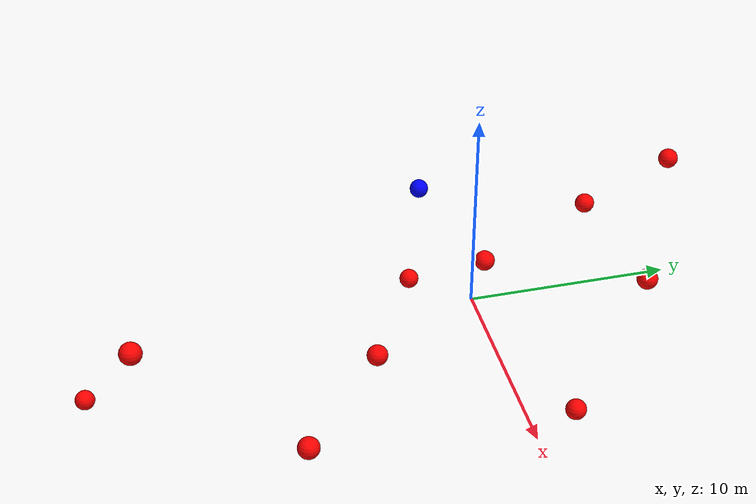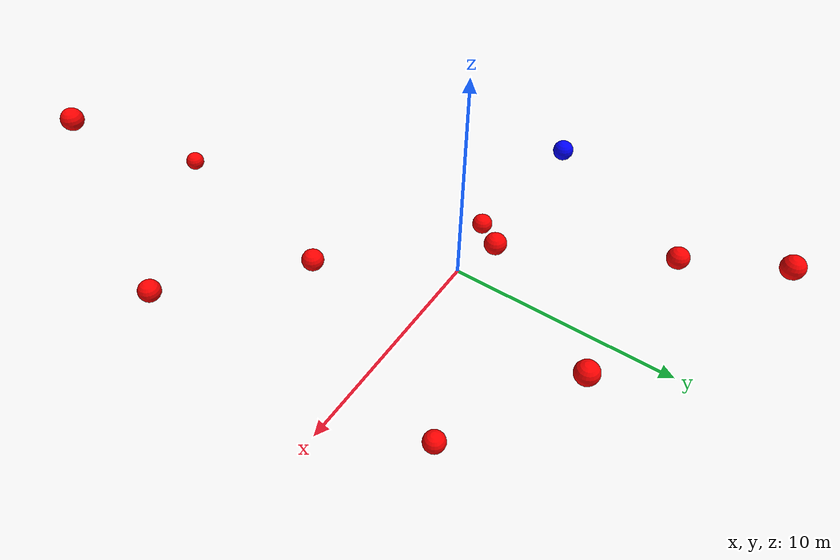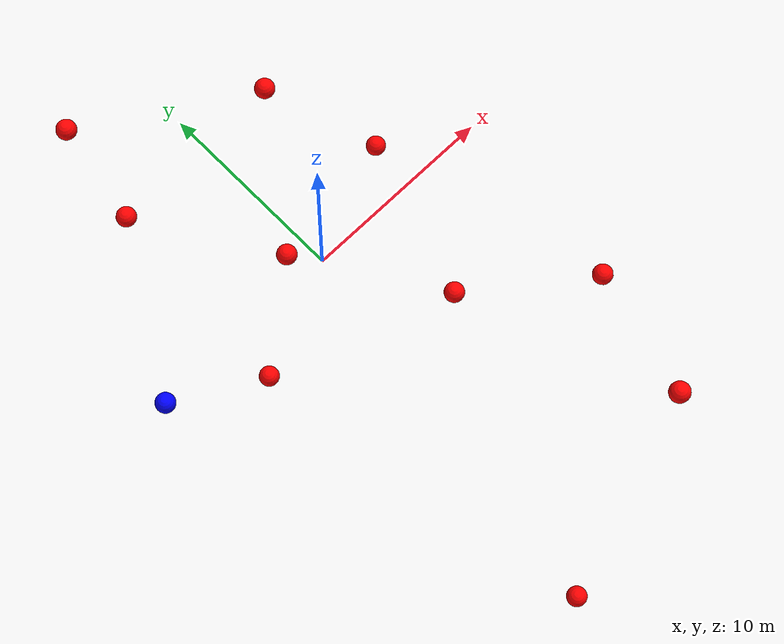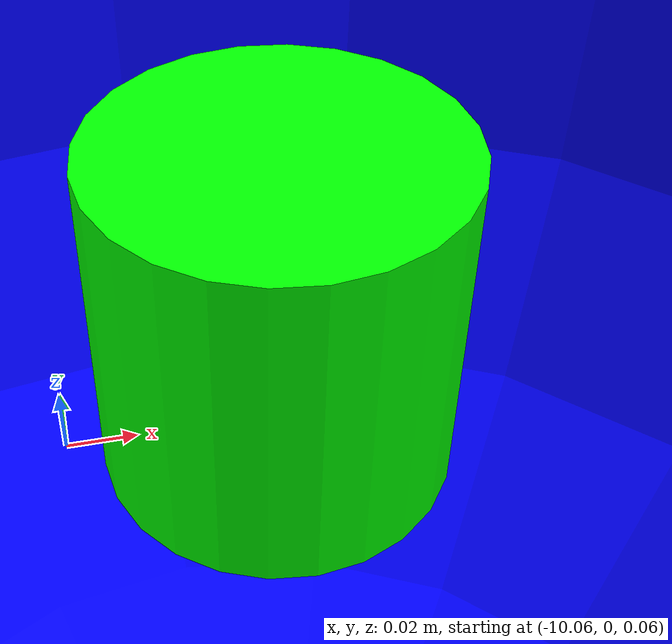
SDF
<?xml version="1.0" ?>
<sdf version="1.8">
    <world name="3d_world">
        <physics name="1ms" type="ode">
            <max_step_size>0.001</max_step_size>
            <real_time_factor>1.0</real_time_factor>
            <real_time_update_rate>1000.0</real_time_update_rate>
        </physics>
        <gravity>0 0 0</gravity>

        <plugin
            filename="gz-sim-physics-system"
            name="gz::sim::v8::systems::Physics">
        </plugin>
        <plugin
            filename="libignition-gazebo-user-commands-system.so"
            name="ignition::gazebo::systems::UserCommands">
        </plugin>
        <plugin
            filename="gz-sim-scene-broadcaster-system"
            name="gz::sim::systems::SceneBroadcaster">
        </plugin>
        <plugin
            filename="gz-sim-sensors-system"
            name="gz::sim::systems::Sensors">
            <render_engine>ogre2</render_engine>
        </plugin>

        <light type="directional" name="sun">
            <cast_shadows>true</cast_shadows>
            <pose>0 0 10 0 0 0</pose>
            <diffuse>0.8 0.8 0.8 1</diffuse>
            <specular>0.2 0.2 0.2 1</specular>
            <attenuation>
                <range>1000</range>
                <constant>0.9</constant>
                <linear>0.01</linear>
                <quadratic>0.001</quadratic>
            </attenuation>
            <direction>-0.5 0.1 -0.9</direction>
        </light>

        <!-- AGENTE -->
        <model name='agente' canonical_link='chassis'>
            <pose relative_to='world'>-10.0 0 0.0 0 0 0</pose>
            <link name='chassis'>
                <pose relative_to='__model__'>0.0 0 0.0 0 0 0</pose>
                <inertial>
                    <mass>1.14395</mass>
                    <inertia>
                        <ixx>0.095329</ixx>
                        <ixy>0</ixy>
                        <ixz>0</ixz>
                        <iyy>0.381317</iyy>
                        <iyz>0</iyz>
                        <izz>0.476646</izz>
                    </inertia>
                </inertial>
                <visual name='visual'>
                    <geometry>
                        <sphere>
                            <radius>0.5</radius>
                        </sphere>
                    </geometry>
                    <material>
                        <ambient>0.0 0.0 1.0 1</ambient>
                        <diffuse>0.0 0.0 1.0 1</diffuse>
                        <specular>0.0 0.0 1.0 1</specular>
                    </material>
                </visual>
                <collision name='collision'>
                    <geometry>
                        <sphere>
                            <radius>0.5</radius>
                        </sphere>
                    </geometry>
                </collision>
                <enable_gravity>false</enable_gravity>
            </link>

            <link name='lidar_link'>
                <pose relative_to='chassis'>0.0 0 0.1 0 0 0</pose>
                <inertial>
                    <mass>0.1</mass>
                    <inertia>
                        <ixx>0.000166667</ixx>
                        <iyy>0.000166667</iyy>
                        <izz>0.000166667</izz>
                    </inertia>
                </inertial>
                <collision name='collision'>
                    <geometry>
                        <cylinder>
                            <radius>0.05</radius>
                            <length>0.1</length>
                        </cylinder>
                    </geometry>
                </collision>
                <visual name='visual'>
                    <geometry>
                        <cylinder>
                            <radius>0.05</radius>
                            <length>0.1</length>
                        </cylinder>
                    </geometry>
                    <material>
                        <ambient>0.0 1.0 0.0 1</ambient>
                        <diffuse>0.0 1.0 0.0 1</diffuse>
                        <specular>0.0 1.0 0.0 1</specular>
                    </material>
                </visual>
                <sensor name="lidar" type="gpu_lidar">
                    <topic>scan</topic>
                    <update_rate>10</update_rate>
                    <lidar>
                        <scan>
                            <horizontal>
                                <samples>5000</samples>
                                <resolution>1</resolution>
                                <min_angle>-3.14159</min_angle>
                                <max_angle>3.14159</max_angle>
                            </horizontal>
                        </scan>
                        <range>
                            <min>0.1</min>
                            <max>10.0</max>
                            <resolution>0.01</resolution>
                        </range>
                    </lidar>
                    <visualize>true</visualize>
                    <always_on>true</always_on>
                    <update_rate>10</update_rate>
                    <pose_frame>lidar</pose_frame>
                </sensor>
                <enable_gravity>false</enable_gravity>
            </link>

            <joint name="lidar_joint" type="fixed">
                <parent>chassis</parent>
                <child>lidar_link</child>
            </joint>

            <plugin
                filename="ignition-gazebo-joint-state-publisher-system"
                name="ignition::gazebo::systems::JointStatePublisher">
            </plugin>
            <plugin
                filename="ignition-gazebo-odometry-publisher-system"
                name="ignition::gazebo::systems::OdometryPublisher">
                <dimensions>3</dimensions>
            </plugin>
            <plugin
                filename="ignition-gazebo-velocity-control-system"
                name="ignition::gazebo::systems::VelocityControl">
                <initial_linear>0.0 0 0</initial_linear>
                <initial_angular>0 0 0.0</initial_angular>
            </plugin>
            <plugin
                filename="libignition-gazebo-pose-publisher-system.so"
                name="ignition::gazebo::systems::PosePublisher">
                <topic>/agente/pose</topic>
                <frame_id>agente</frame_id>
                <update_rate>30</update_rate>
            </plugin>
        </model>

        <!-- OBSTACLE 1 -->
        <model name='obstacle_1' canonical_link='obstacle'>
            <static>false</static>
            <pose relative_to='world'>6.66 3.19 -2.01 0 0 0</pose>
            <link name='obstacle'>
                <pose relative_to='__model__'>0.0 0 0.0 0 0 0</pose>
                <visual name='visual'>
                    <geometry>
                        <sphere>
                            <radius>0.50</radius>
                        </sphere>
                    </geometry>
                    <material>
                        <ambient>1.0 0.0 0.0 1</ambient>
                        <diffuse>1.0 0.0 0.0 1</diffuse>
                        <specular>1.0 0.0 0.0 1</specular>
                    </material>
                </visual>
                <collision name='collision'>
                    <geometry>
                        <sphere>
                            <radius>0.50</radius>
                        </sphere>
                    </geometry>
                </collision>
                <enable_gravity>false</enable_gravity>
            </link>

            <plugin
                filename="ignition-gazebo-velocity-control-system"
                name="ignition::gazebo::systems::VelocityControl">
                <initial_linear>-1.35 -0.74 0.47</initial_linear>
                <initial_angular>0 0 0</initial_angular>
            </plugin>

            <plugin
                filename="ignition-gazebo-odometry-publisher-system"
                name="ignition::gazebo::systems::OdometryPublisher">
                <dimensions>3</dimensions>
            </plugin>
        </model>

        <!-- OBSTACLE 2 -->
        <model name='obstacle_2' canonical_link='obstacle'>
            <static>false</static>
            <pose relative_to='world'>3.27 -5.50 0.26 0 0 0</pose>
            <link name='obstacle'>
                <pose relative_to='__model__'>0.0 0 0.0 0 0 0</pose>
                <visual name='visual'>
                    <geometry>
                        <sphere>
                            <radius>0.50</radius>
                        </sphere>
                    </geometry>
                    <material>
                        <ambient>1.0 0.0 0.0 1</ambient>
                        <diffuse>1.0 0.0 0.0 1</diffuse>
                        <specular>1.0 0.0 0.0 1</specular>
                    </material>
                </visual>
                <collision name='collision'>
                    <geometry>
                        <sphere>
                            <radius>0.50</radius>
                        </sphere>
                    </geometry>
                </collision>
                <enable_gravity>false</enable_gravity>
            </link>

            <plugin
                filename="ignition-gazebo-velocity-control-system"
                name="ignition::gazebo::systems::VelocityControl">
                <initial_linear>-1.64 1.14 -0.05</initial_linear>
                <initial_angular>0 0 0</initial_angular>
            </plugin>

            <plugin
                filename="ignition-gazebo-odometry-publisher-system"
                name="ignition::gazebo::systems::OdometryPublisher">
                <dimensions>3</dimensions>
            </plugin>
        </model>

        <!-- OBSTACLE 3 -->
        <model name='obstacle_3' canonical_link='obstacle'>
            <static>false</static>
            <pose relative_to='world'>-5.28 -1.76 -2.37 0 0 0</pose>
            <link name='obstacle'>
                <pose relative_to='__model__'>0.0 0 0.0 0 0 0</pose>
                <visual name='visual'>
                    <geometry>
                        <sphere>
                            <radius>0.50</radius>
                        </sphere>
                    </geometry>
                    <material>
                        <ambient>1.0 0.0 0.0 1</ambient>
                        <diffuse>1.0 0.0 0.0 1</diffuse>
                        <specular>1.0 0.0 0.0 1</specular>
                    </material>
                </visual>
                <collision name='collision'>
                    <geometry>
                        <sphere>
                            <radius>0.50</radius>
                        </sphere>
                    </geometry>
                </collision>
                <enable_gravity>false</enable_gravity>
            </link>

            <plugin
                filename="ignition-gazebo-velocity-control-system"
                name="ignition::gazebo::systems::VelocityControl">
                <initial_linear>0.91 0.59 0.80</initial_linear>
                <initial_angular>0 0 0</initial_angular>
            </plugin>

            <plugin
                filename="ignition-gazebo-odometry-publisher-system"
                name="ignition::gazebo::systems::OdometryPublisher">
                <dimensions>3</dimensions>
            </plugin>
        </model>

        <!-- OBSTACLE 4 -->
        <model name='obstacle_4' canonical_link='obstacle'>
            <static>false</static>
            <pose relative_to='world'>3.47 7.50 2.47 0 0 0</pose>
            <link name='obstacle'>
                <pose relative_to='__model__'>0.0 0 0.0 0 0 0</pose>
                <visual name='visual'>
                    <geometry>
                        <sphere>
                            <radius>0.50</radius>
                        </sphere>
                    </geometry>
                    <material>
                        <ambient>1.0 0.0 0.0 1</ambient>
                        <diffuse>1.0 0.0 0.0 1</diffuse>
                        <specular>1.0 0.0 0.0 1</specular>
                    </material>
                </visual>
                <collision name='collision'>
                    <geometry>
                        <sphere>
                            <radius>0.50</radius>
                        </sphere>
                    </geometry>
                </collision>
                <enable_gravity>false</enable_gravity>
            </link>

            <plugin
                filename="ignition-gazebo-velocity-control-system"
                name="ignition::gazebo::systems::VelocityControl">
                <initial_linear>-0.43 -1.63 -0.54</initial_linear>
                <initial_angular>0 0 0</initial_angular>
            </plugin>

            <plugin
                filename="ignition-gazebo-odometry-publisher-system"
                name="ignition::gazebo::systems::OdometryPublisher">
                <dimensions>3</dimensions>
            </plugin>
        </model>

        <!-- OBSTACLE 5 -->
        <model name='obstacle_5' canonical_link='obstacle'>
            <static>false</static>
            <pose relative_to='world'>-2.02 -19.15 -4.32 0 0 0</pose>
            <link name='obstacle'>
                <pose relative_to='__model__'>0.0 0 0.0 0 0 0</pose>
                <visual name='visual'>
                    <geometry>
                        <sphere>
                            <radius>0.50</radius>
                        </sphere>
                    </geometry>
                    <material>
                        <ambient>1.0 0.0 0.0 1</ambient>
                        <diffuse>1.0 0.0 0.0 1</diffuse>
                        <specular>1.0 0.0 0.0 1</specular>
                    </material>
                </visual>
                <collision name='collision'>
                    <geometry>
                        <sphere>
                            <radius>0.50</radius>
                        </sphere>
                    </geometry>
                </collision>
                <enable_gravity>false</enable_gravity>
            </link>

            <plugin
                filename="ignition-gazebo-velocity-control-system"
                name="ignition::gazebo::systems::VelocityControl">
                <initial_linear>-0.02 1.95 0.44</initial_linear>
                <initial_angular>0 0 0</initial_angular>
            </plugin>

            <plugin
                filename="ignition-gazebo-odometry-publisher-system"
                name="ignition::gazebo::systems::OdometryPublisher">
                <dimensions>3</dimensions>
            </plugin>
        </model>

        <!-- OBSTACLE 6 -->
        <model name='obstacle_6' canonical_link='obstacle'>
            <static>false</static>
            <pose relative_to='world'>5.66 -16.51 4.66 0 0 0</pose>
            <link name='obstacle'>
                <pose relative_to='__model__'>0.0 0 0.0 0 0 0</pose>
                <visual name='visual'>
                    <geometry>
                        <sphere>
                            <radius>0.50</radius>
                        </sphere>
                    </geometry>
                    <material>
                        <ambient>1.0 0.0 0.0 1</ambient>
                        <diffuse>1.0 0.0 0.0 1</diffuse>
                        <specular>1.0 0.0 0.0 1</specular>
                    </material>
                </visual>
                <collision name='collision'>
                    <geometry>
                        <sphere>
                            <radius>0.50</radius>
                        </sphere>
                    </geometry>
                </collision>
                <enable_gravity>false</enable_gravity>
            </link>

            <plugin
                filename="ignition-gazebo-velocity-control-system"
                name="ignition::gazebo::systems::VelocityControl">
                <initial_linear>-0.03 1.92 -0.54</initial_linear>
                <initial_angular>0 0 0</initial_angular>
            </plugin>

            <plugin
                filename="ignition-gazebo-odometry-publisher-system"
                name="ignition::gazebo::systems::OdometryPublisher">
                <dimensions>3</dimensions>
            </plugin>
        </model>

        <!-- OBSTACLE 7 -->
        <model name='obstacle_7' canonical_link='obstacle'>
            <static>false</static>
            <pose relative_to='world'>8.76 -9.79 0.62 0 0 0</pose>
            <link name='obstacle'>
                <pose relative_to='__model__'>0.0 0 0.0 0 0 0</pose>
                <visual name='visual'>
                    <geometry>
                        <sphere>
                            <radius>0.50</radius>
                        </sphere>
                    </geometry>
                    <material>
                        <ambient>1.0 0.0 0.0 1</ambient>
                        <diffuse>1.0 0.0 0.0 1</diffuse>
                        <specular>1.0 0.0 0.0 1</specular>
                    </material>
                </visual>
                <collision name='collision'>
                    <geometry>
                        <sphere>
                            <radius>0.50</radius>
                        </sphere>
                    </geometry>
                </collision>
                <enable_gravity>false</enable_gravity>
            </link>

            <plugin
                filename="ignition-gazebo-velocity-control-system"
                name="ignition::gazebo::systems::VelocityControl">
                <initial_linear>-0.28 1.45 -0.09</initial_linear>
                <initial_angular>0 0 0</initial_angular>
            </plugin>

            <plugin
                filename="ignition-gazebo-odometry-publisher-system"
                name="ignition::gazebo::systems::OdometryPublisher">
                <dimensions>3</dimensions>
            </plugin>
        </model>

        <!-- OBSTACLE 8 -->
        <model name='obstacle_8' canonical_link='obstacle'>
            <static>false</static>
            <pose relative_to='world'>-4.84 12.01 3.33 0 0 0</pose>
            <link name='obstacle'>
                <pose relative_to='__model__'>0.0 0 0.0 0 0 0</pose>
                <visual name='visual'>
                    <geometry>
                        <sphere>
                            <radius>0.50</radius>
                        </sphere>
                    </geometry>
                    <material>
                        <ambient>1.0 0.0 0.0 1</ambient>
                        <diffuse>1.0 0.0 0.0 1</diffuse>
                        <specular>1.0 0.0 0.0 1</specular>
                    </material>
                </visual>
                <collision name='collision'>
                    <geometry>
                        <sphere>
                            <radius>0.50</radius>
                        </sphere>
                    </geometry>
                </collision>
                <enable_gravity>false</enable_gravity>
            </link>

            <plugin
                filename="ignition-gazebo-velocity-control-system"
                name="ignition::gazebo::systems::VelocityControl">
                <initial_linear>1.33 -1.44 -0.40</initial_linear>
                <initial_angular>0 0 0</initial_angular>
            </plugin>

            <plugin
                filename="ignition-gazebo-odometry-publisher-system"
                name="ignition::gazebo::systems::OdometryPublisher">
                <dimensions>3</dimensions>
            </plugin>
        </model>

        <!-- OBSTACLE 9 -->
        <model name='obstacle_9' canonical_link='obstacle'>
            <static>false</static>
            <pose relative_to='world'>-1.28 1.03 1.24 0 0 0</pose>
            <link name='obstacle'>
                <pose relative_to='__model__'>0.0 0 0.0 0 0 0</pose>
                <visual name='visual'>
                    <geometry>
                        <sphere>
                            <radius>0.50</radius>
                        </sphere>
                    </geometry>
                    <material>
                        <ambient>1.0 0.0 0.0 1</ambient>
                        <diffuse>1.0 0.0 0.0 1</diffuse>
                        <specular>1.0 0.0 0.0 1</specular>
                    </material>
                </visual>
                <collision name='collision'>
                    <geometry>
                        <sphere>
                            <radius>0.50</radius>
                        </sphere>
                    </geometry>
                </collision>
                <enable_gravity>false</enable_gravity>
            </link>

            <plugin
                filename="ignition-gazebo-velocity-control-system"
                name="ignition::gazebo::systems::VelocityControl">
                <initial_linear>-0.99 -0.41 -0.50</initial_linear>
                <initial_angular>0 0 0</initial_angular>
            </plugin>

            <plugin
                filename="ignition-gazebo-odometry-publisher-system"
                name="ignition::gazebo::systems::OdometryPublisher">
                <dimensions>3</dimensions>
            </plugin>
        </model>

        <!-- OBSTACLE 10 -->
        <model name='obstacle_10' canonical_link='obstacle'>
            <static>false</static>
            <pose relative_to='world'>-5.30 7.80 0.89 0 0 0</pose>
            <link name='obstacle'>
                <pose relative_to='__model__'>0.0 0 0.0 0 0 0</pose>
                <visual name='visual'>
                    <geometry>
                        <sphere>
                            <radius>0.50</radius>
                        </sphere>
                    </geometry>
                    <material>
                        <ambient>1.0 0.0 0.0 1</ambient>
                        <diffuse>1.0 0.0 0.0 1</diffuse>
                        <specular>1.0 0.0 0.0 1</specular>
                    </material>
                </visual>
                <collision name='collision'>
                    <geometry>
                        <sphere>
                            <radius>0.50</radius>
                        </sphere>
                    </geometry>
                </collision>
                <enable_gravity>false</enable_gravity>
            </link>

            <plugin
                filename="ignition-gazebo-velocity-control-system"
                name="ignition::gazebo::systems::VelocityControl">
                <initial_linear>1.18 -1.60 -0.18</initial_linear>
                <initial_angular>0 0 0</initial_angular>
            </plugin>

            <plugin
                filename="ignition-gazebo-odometry-publisher-system"
                name="ignition::gazebo::systems::OdometryPublisher">
                <dimensions>3</dimensions>
            </plugin>
        </model>

    </world>
</sdf>
